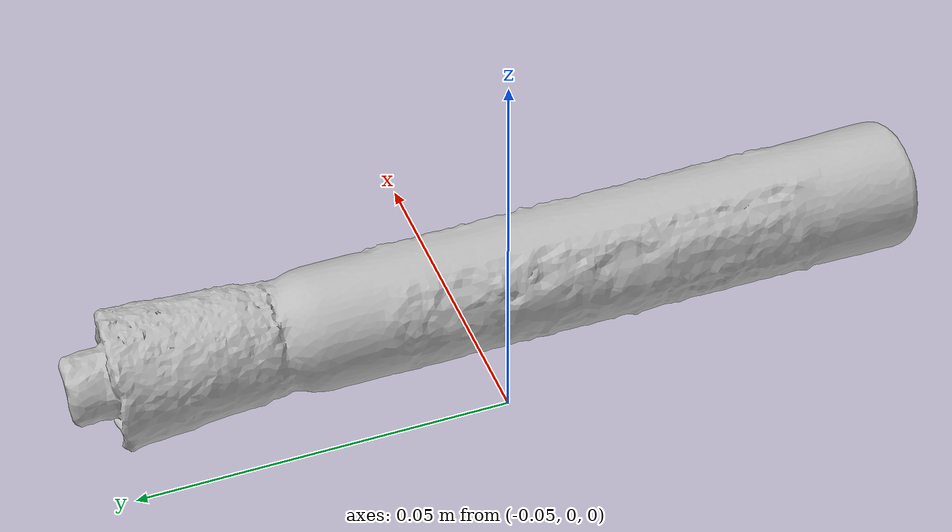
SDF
<?xml version='1.0'?>
<sdf version="1.4">
  <model name="large_marker">
    <static>false</static>
    <link name="link">
      <inertial>
        <pose>-0.035725124851894 -0.00788077074326952 0.009018296996191047 1.5699074828200996 -0.9271848404237287 -3.120076490318127</pose>
        <mass>2.7399944924772163e-05</mass>
        <inertia>
          <ixx>3.098544090953974e-08</ixx>
          <ixy>-6.990670232899168e-24</ixy>
          <ixz>-4.381884113982346e-25</ixz>
          <iyy>3.098119463302472e-08</iyy>
          <iyz>1.6068861975935736e-25</iyz>
          <izz>1.0631513526588344e-09</izz>
        </inertia>
      </inertial>
      <collision name="collision">
        <geometry>
          <mesh>
            <!-- Use a downsampled mesh for collisions -->
            <uri>model://040_large_marker/google_16k/040_large_marker.obj</uri>
            </mesh>
        </geometry>
        <surface>
          <friction>
            <ode>
              <mu>0.9</mu>
              <mu2>0.9</mu2>
            </ode>
          </friction>
          <contact>
            <ode>
              <kp>1000000000000.0</kp>
              <kd>1</kd>
              <min_depth>0.0001</min_depth>
              <max_vel>0.01</max_vel>
            </ode>
          </contact>
          <bounce>
            <restitution_coefficient>0.1</restitution_coefficient>
            <threshold>1000.0</threshold>
          </bounce>
        </surface>
      </collision>
      <visual name="visual">
        <geometry>
          <mesh>
            <uri>model://040_large_marker/google_16k/040_large_marker.dae</uri>
            </mesh>
        </geometry>
      </visual>
    </link>
  </model>
</sdf>
